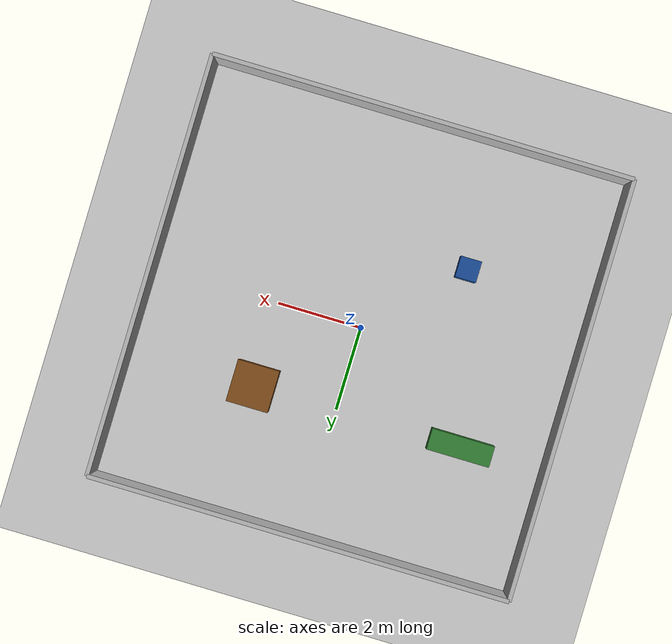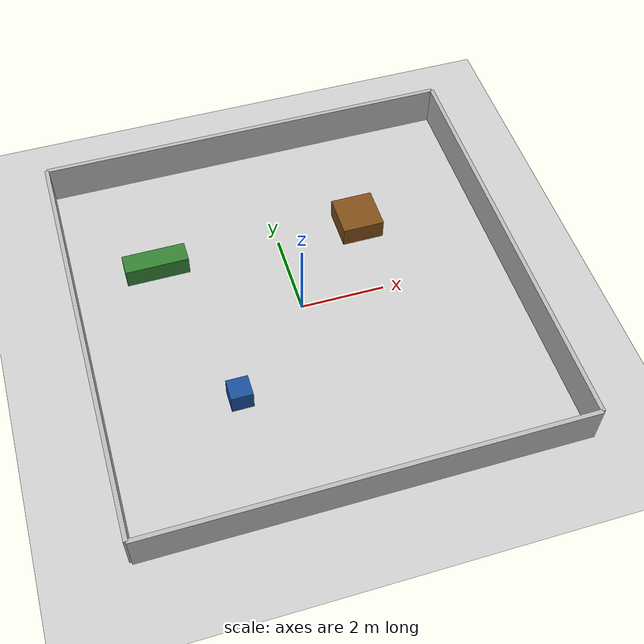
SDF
<?xml version="1.0"?>
<sdf version="1.6">
  <world name="cleaning_room">
    <include><uri>model://ground_plane</uri></include>
    <include><uri>model://sun</uri></include>

    <!-- North Wall -->
    <model name="wall_north">
      <static>true</static>
      <pose>0 5 0.5 0 0 0</pose>
      <link name="link">
        <collision name="col"><geometry><box><size>10 0.1 1</size></box></geometry></collision>
        <visual name="vis"><geometry><box><size>10 0.1 1</size></box></geometry></visual>
      </link>
    </model>

    <!-- South Wall -->
    <model name="wall_south">
      <static>true</static>
      <pose>0 -5 0.5 0 0 0</pose>
      <link name="link">
        <collision name="col"><geometry><box><size>10 0.1 1</size></box></geometry></collision>
        <visual name="vis"><geometry><box><size>10 0.1 1</size></box></geometry></visual>
      </link>
    </model>

    <!-- East Wall -->
    <model name="wall_east">
      <static>true</static>
      <pose>5 0 0.5 0 0 0</pose>
      <link name="link">
        <collision name="col"><geometry><box><size>0.1 10 1</size></box></geometry></collision>
        <visual name="vis"><geometry><box><size>0.1 10 1</size></box></geometry></visual>
      </link>
    </model>

    <!-- West Wall -->
    <model name="wall_west">
      <static>true</static>
      <pose>-5 0 0.5 0 0 0</pose>
      <link name="link">
        <collision name="col"><geometry><box><size>0.1 10 1</size></box></geometry></collision>
        <visual name="vis"><geometry><box><size>0.1 10 1</size></box></geometry></visual>
      </link>
    </model>

    <!-- Table obstacle -->
    <model name="table">
      <static>true</static>
      <pose>2 2 0.25 0 0 0</pose>
      <link name="link">
        <collision name="col"><geometry><box><size>1 1 0.5</size></box></geometry></collision>
        <visual name="vis"><geometry><box><size>1 1 0.5</size></box></geometry>
          <material><ambient>0.5 0.3 0.1 1</ambient></material>
        </visual>
      </link>
    </model>

    <!-- Chair obstacle -->
    <model name="chair">
      <static>true</static>
      <pose>-2 -2 0.25 0 0 0</pose>
      <link name="link">
        <collision name="col"><geometry><box><size>0.5 0.5 0.5</size></box></geometry></collision>
        <visual name="vis"><geometry><box><size>0.5 0.5 0.5</size></box></geometry>
          <material><ambient>0.1 0.3 0.6 1</ambient></material>
        </visual>
      </link>
    </model>

    <!-- Sofa obstacle -->
    <model name="sofa">
      <static>true</static>
      <pose>-3 2 0.25 0 0 0</pose>
      <link name="link">
        <collision name="col"><geometry><box><size>1.5 0.5 0.5</size></box></geometry></collision>
        <visual name="vis"><geometry><box><size>1.5 0.5 0.5</size></box></geometry>
          <material><ambient>0.2 0.5 0.2 1</ambient></material>
        </visual>
      </link>
    </model>

  </world>
</sdf>
